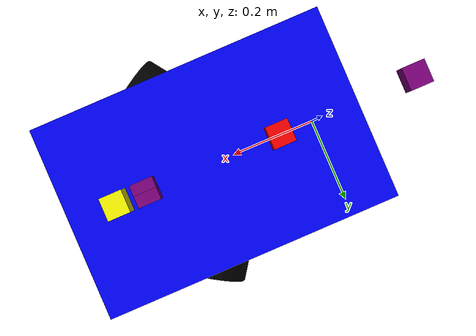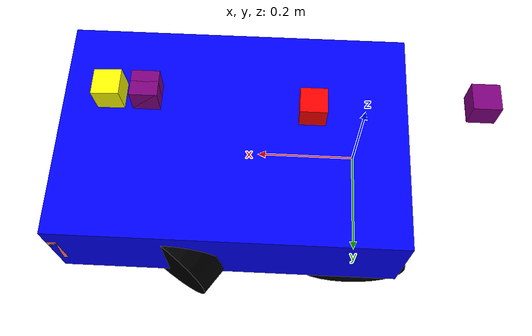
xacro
<?xml version="1.0"?>
<robot xmlns:xacro="http://www.ros.org/wiki/xacro" name="mower">

  <!-- ============================ materials ============================ -->
  <material name="blue"><color rgba="0 0 1 1"/></material>
  <material name="black"><color rgba="0 0 0 1"/></material>
  <material name="green"><color rgba="0 1 0 1"/></material>
  <material name="red"><color rgba="1 0 0 1"/></material>
  <material name="yellow"><color rgba="1 1 0 1"/></material>
  <material name="pink"><color rgba="1 0.5 0.5 1"/></material>
  <material name="purple"><color rgba="0.5 0 0.5 1"/></material>

  <!-- ================== tuning knobs (TODO: calibrate) ================= -->
  <!-- Chassis visual box (cosmetic; the base_link origin stays at the
       rear drive axle centre regardless of where the box is drawn). -->
  <xacro:property name="chassis_size" value="0.7 0.46 0.2"/>
  <xacro:property name="chassis_xyz"  value="0.25 0 0"/>

  <xacro:property name="wheel_radius"  value="0.11"/>
  <xacro:property name="wheel_width"   value="0.06"/>
  <xacro:property name="drive_axle_x"  value="0.0"/>
  <xacro:property name="drive_track_y" value="0.195"/>
  <xacro:property name="wheel_drop_z"  value="-0.05"/>
  <!-- Omni wheels (castor pair at the front), canted by omni_yaw about Z. -->
  <xacro:property name="omni_x"        value="0.36728"/>
  <xacro:property name="omni_track_y"  value="0.2"/>
  <xacro:property name="omni_yaw"      value="0.610865"/>

  <!-- Sensor mounts. TODO(calib): measure on hardware. imu_xyz is
       0 0 0 deliberately — it matches wit_imu_driver's current
       identity broadcast (see the frame contract above). -->
  <xacro:property name="imu_xyz"    value="0 0 0"/>
  <xacro:property name="gps_xyz"    value="0.098 0 0.214"/>
  <xacro:property name="bumper_xyz" value="0.59 0 0"/>  <!-- front face at the owner-measured 0.60 -->
  <xacro:property name="cutter_xyz" value="0.23 0 -0.05"/>
  <xacro:property name="cutter_radius" value="0.10"/>

  <!-- Camera mounts (vendor values). -->
  <xacro:property name="stereo_cam_xyz" value="0.466 0 0.25"/>
  <xacro:property name="oa_cam_xyz"     value="0.4 0 0.25"/>
  <xacro:property name="rear_cam_xyz"   value="-0.201 0 0.25"/>

  <xacro:property name="sensor_box" value="0.05 0.05 0.05"/>
  <xacro:property name="bumper_box" value="0.02 0.46 0.1"/>

  <!-- ============================ macros ============================ -->

  <!-- Fixed box sensor on a fixed joint off base_link.
       xyz/rpy/size are space-separated triples — always pass
       them explicitly (xacro params cannot default to a
       multi-token value). -->
  <xacro:macro name="box_sensor"
               params="name xyz rpy size material:=green">
    <link name="${name}">
      <visual>
        <geometry><box size="${size}"/></geometry>
        <material name="${material}"/>
      </visual>
    </link>
    <joint name="${name}_joint" type="fixed">
      <parent link="base_link"/>
      <child link="${name}"/>
      <origin xyz="${xyz}" rpy="${rpy}"/>
    </joint>
  </xacro:macro>

  <!-- Drive wheel: continuous joint about Z, cylinder axis rotated
       to lie along Y (rpy = +/- pi/2 about X). -->
  <xacro:macro name="drive_wheel" params="side y_sign">
    <link name="${side}_wheel">
      <visual>
        <geometry>
          <cylinder radius="${wheel_radius}" length="${wheel_width}"/>
        </geometry>
        <material name="black"/>
      </visual>
    </link>
    <joint name="${side}_wheel_joint" type="continuous">
      <parent link="base_link"/>
      <child link="${side}_wheel"/>
      <origin xyz="${drive_axle_x} ${y_sign * drive_track_y} ${wheel_drop_z}"
              rpy="${-y_sign * 1.5708} 0 0"/>
      <axis xyz="0 0 1"/>
    </joint>
  </xacro:macro>

  <!-- Omni wheel: fixed joint, canted by +/- omni_yaw about Z. -->
  <xacro:macro name="omni_wheel" params="side y_sign">
    <link name="${side}_omni_wheel">
      <visual>
        <geometry>
          <cylinder radius="${wheel_radius}" length="${wheel_width}"/>
        </geometry>
        <material name="black"/>
      </visual>
    </link>
    <joint name="${side}_omni_wheel_joint" type="fixed">
      <parent link="base_link"/>
      <child link="${side}_omni_wheel"/>
      <origin xyz="${omni_x} ${y_sign * omni_track_y} ${wheel_drop_z}"
              rpy="${-y_sign * 1.57} 0 ${-y_sign * omni_yaw}"/>
    </joint>
  </xacro:macro>

  <!-- ============================ chassis ============================ -->
  <link name="base_link">
    <visual>
      <geometry><box size="${chassis_size}"/></geometry>
      <origin xyz="${chassis_xyz}" rpy="0 0 0"/>
      <material name="blue"/>
    </visual>
  </link>

  <!-- Cutter (MCU-owned; geometry only). -->
  <link name="cutter_link">
    <visual>
      <geometry>
        <cylinder radius="${cutter_radius}" length="0.05"/>
      </geometry>
      <material name="red"/>
    </visual>
  </link>
  <joint name="base_joint" type="fixed">
    <parent link="base_link"/>
    <child link="cutter_link"/>
    <origin xyz="${cutter_xyz}" rpy="0 0 0"/>
  </joint>

  <link name="blade_link">
    <visual>
      <geometry>
        <cylinder radius="${cutter_radius}" length="0.004"/>
      </geometry>
      <material name="red"/>
    </visual>
  </link>
  <joint name="blade_joint" type="fixed">
    <parent link="base_link"/>
    <child link="blade_link"/>
    <origin xyz="${cutter_xyz}" rpy="0 0 0"/>
  </joint>

  <!-- base_footprint: identity child of base_link (MowgliNext requires it). -->
  <link name="base_footprint"/>
  <joint name="base_footprint_joint" type="fixed">
    <parent link="base_link"/>
    <child link="base_footprint"/>
    <origin xyz="0 0 0" rpy="0 0 0"/>
  </joint>

  <xacro:drive_wheel side="left"  y_sign="-1"/>
  <xacro:drive_wheel side="right" y_sign="1"/>
  <xacro:omni_wheel side="left"  y_sign="-1"/>
  <xacro:omni_wheel side="right" y_sign="1"/>

  <!-- ============================ sensors ============================ -->
  <!-- IMU: identity mount matches wit_imu_driver's base_link->imu_link
       broadcast (see frame contract). TODO(calib): real offset here. -->
  <xacro:box_sensor name="imu_link" xyz="${imu_xyz}" rpy="0 0 0" size="${sensor_box}" material="green"/>
  <!-- GNSS antenna (UM960): vendor CAD lever arm x 0.098 (owner measured 0.10), z 0.214. -->
  <xacro:box_sensor name="gps_link" xyz="${gps_xyz}" rpy="0 0 0" size="${sensor_box}" material="red"/>
  <!-- Bumper strip. -->
  <xacro:box_sensor name="bumper" xyz="${bumper_xyz}" rpy="0 0 0"
                    size="${bumper_box}" material="pink"/>

  <!-- ============================ cameras ============================ -->
  <!-- Front stereo (Metoak; driver planned). -->
  <xacro:box_sensor name="stereo_camera" xyz="${stereo_cam_xyz}"
                    rpy="1.64061 0 1.57079" size="${sensor_box}" material="yellow"/>
  <link name="stereo_camera_optical"/>
  <joint name="stereo_camera_optical_joint" type="fixed">
    <parent link="base_link"/>
    <child link="stereo_camera_optical"/>
    <!-- y -0.041 (was 0, 2026-10-20): the vendor ESKF base_vio (0.466, -0.041), drive-axle
         origin, puts the optical centre on the RIGHT eye (the disparity reference). -->
    <origin xyz="0.466 -0.041 0.240" rpy="-1.5547956 0 -1.5707963"/>
  </joint>
  <link name="stereo_camera_imu"/>
  <joint name="stereo_camera_imu_joint" type="fixed">
    <parent link="stereo_camera_optical"/>
    <child link="stereo_camera_imu"/>
    <origin xyz="0.05143 0.00453 -0.01503" rpy="0 3.14159265 0"/>
  </joint>
  <!-- OA cameras — frames match cameras.launch.py camera_frame_id. -->
  <xacro:box_sensor name="left_oa_camera" xyz="${oa_cam_xyz}"
                    rpy="0 1.57079 1.57079" size="${sensor_box}" material="purple"/>
  <xacro:box_sensor name="right_oa_camera" xyz="${oa_cam_xyz}"
                    rpy="0 1.57079 -1.57079" size="${sensor_box}" material="purple"/>
  <!-- Rear camera. -->
  <xacro:box_sensor name="rear_camera" xyz="${rear_cam_xyz}"
                    rpy="-1.57079 0 1.57079" size="${sensor_box}" material="purple"/>

</robot>
